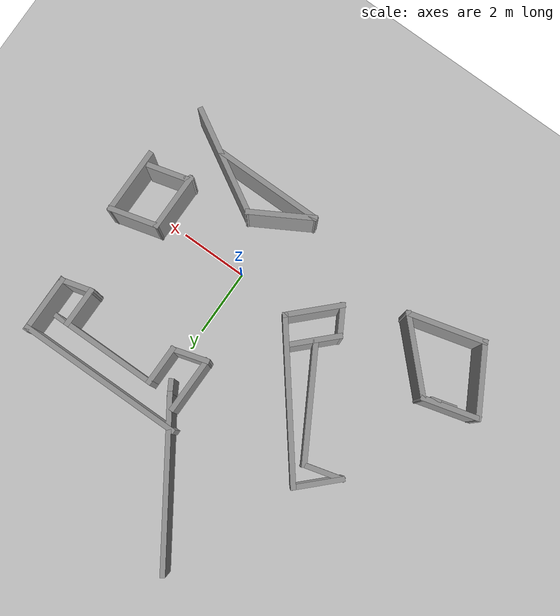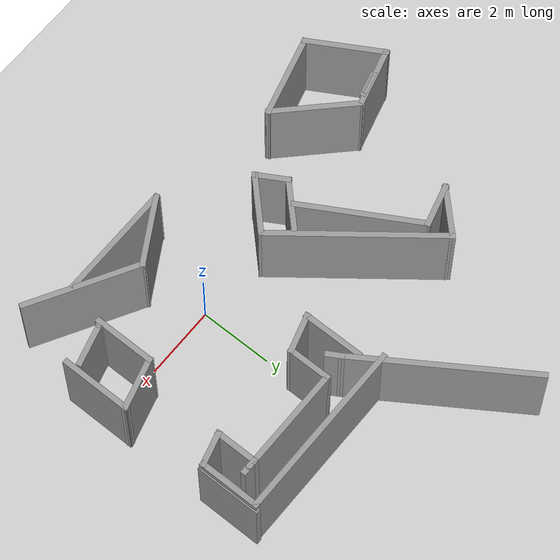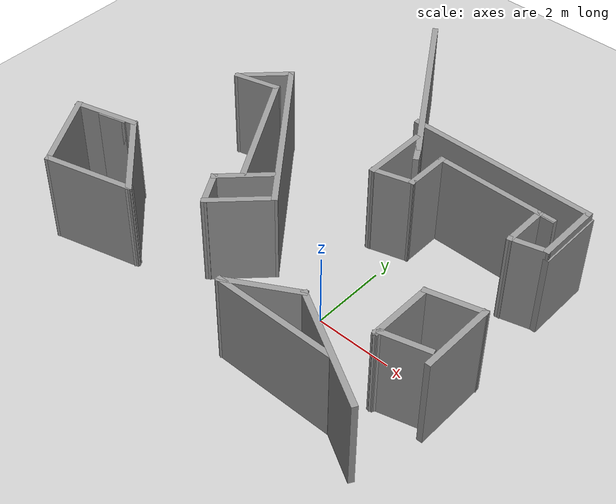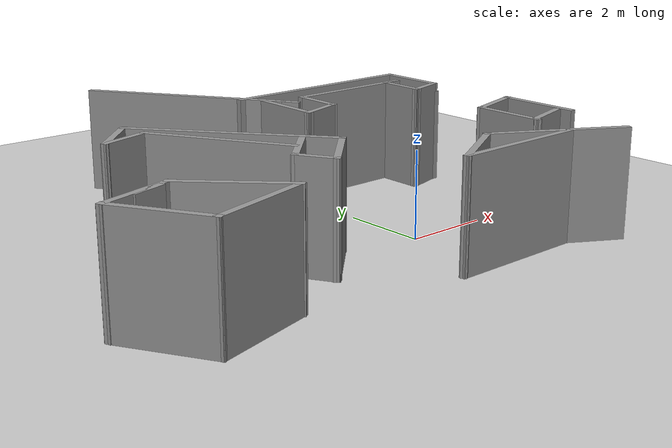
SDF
<sdf version="1.7">
 <world name="default">
  <model name="ground_plane">
   <static>1</static>
   <link name="link">
    <collision name="collision">
     <geometry><plane><normal>0 0 1</normal><size>100 100</size></plane></geometry>
     <surface><friction><ode><mu>100</mu><mu2>50</mu2></ode></friction></surface>
    </collision>
    <visual name="visual">
     <cast_shadows>0</cast_shadows>
     <geometry><plane><normal>0 0 1</normal><size>100 100</size></plane></geometry>
     <material>
      <script><uri>file://media/materials/scripts/gazebo.material</uri><name>Gazebo/Grey</name></script>
     </material>
    </visual>
   </link>
  </model>
  <model name="Untitled_0_clone">
   <pose>0.28562 4.58124 0 0 -0 0</pose>
   <link name="Wall_28">
    <collision name="Wall_28_Collision">
     <geometry><box><size>5.05917 0.15 2.5</size></box></geometry>
     <pose>0 0 1.25 0 -0 0</pose>
    </collision>
    <visual name="Wall_28_Visual">
     <pose>0 0 1.25 0 -0 0</pose>
     <geometry><box><size>5.05917 0.15 2.5</size></box></geometry>
     <material>
      <script><uri>file://media/materials/scripts/gazebo.material</uri><name>Gazebo/Grey</name></script>
      <ambient>1 1 1 1</ambient>
     </material>
     <meta><layer>0</layer></meta>
    </visual>
    <pose>-2.10639 1.43926 0 0 -0 2.15315</pose>
   </link>
   <link name="Wall_30">
    <collision name="Wall_30_Collision">
     <geometry><box><size>5 0.15 2.5</size></box></geometry>
     <pose>0 0 1.25 0 -0 0</pose>
    </collision>
    <visual name="Wall_30_Visual">
     <pose>0 0 1.25 0 -0 0</pose>
     <geometry><box><size>5 0.15 2.5</size></box></geometry>
     <material>
      <script><uri>file://media/materials/scripts/gazebo.material</uri><name>Gazebo/Grey</name></script>
      <ambient>1 1 1 1</ambient>
     </material>
     <meta><layer>0</layer></meta>
    </visual>
    <pose>1.04342 0.171913 0 0 -0 0</pose>
   </link>
   <link name="Wall_31">
    <collision name="Wall_31_Collision">
     <geometry><box><size>1.75 0.15 2.5</size></box></geometry>
     <pose>0 0 1.25 0 -0 0</pose>
    </collision>
    <visual name="Wall_31_Visual">
     <pose>0 0 1.25 0 -0 0</pose>
     <geometry><box><size>1.75 0.15 2.5</size></box></geometry>
     <material>
      <script><uri>file://media/materials/scripts/gazebo.material</uri><name>Gazebo/Grey</name></script>
      <ambient>1 1 1 1</ambient>
     </material>
     <meta><layer>0</layer></meta>
    </visual>
    <pose>3.46842 -0.628087 0 0 -0 -1.5708</pose>
   </link>
   <link name="Wall_32">
    <collision name="Wall_32_Collision">
     <geometry><box><size>1 0.15 2.5</size></box></geometry>
     <pose>0 0 1.25 0 -0 0</pose>
    </collision>
    <visual name="Wall_32_Visual">
     <pose>0 0 1.25 0 -0 0</pose>
     <geometry><box><size>1 0.15 2.5</size></box></geometry>
     <material>
      <script><uri>file://media/materials/scripts/gazebo.material</uri><name>Gazebo/Grey</name></script>
      <ambient>1 1 1 1</ambient>
     </material>
     <meta><layer>0</layer></meta>
    </visual>
    <pose>3.0579 -1.53808 0 0 -0 -2.87979</pose>
   </link>
   <link name="Wall_33">
    <collision name="Wall_33_Collision">
     <geometry><box><size>1.25 0.15 2.5</size></box></geometry>
     <pose>0 0 1.25 0 -0 0</pose>
    </collision>
    <visual name="Wall_33_Visual">
     <pose>0 0 1.25 0 -0 0</pose>
     <geometry><box><size>1.25 0.15 2.5</size></box></geometry>
     <material>
      <script><uri>file://media/materials/scripts/gazebo.material</uri><name>Gazebo/Grey</name></script>
      <ambient>1 1 1 1</ambient>
     </material>
     <meta><layer>0</layer></meta>
    </visual>
    <pose>2.64738 -1.09808 0 0 -0 1.5708</pose>
   </link>
   <link name="Wall_34">
    <collision name="Wall_34_Collision">
     <geometry><box><size>0.5 0.15 2.5</size></box></geometry>
     <pose>0 0 1.25 0 -0 0</pose>
    </collision>
    <visual name="Wall_34_Visual">
     <pose>0 0 1.25 0 -0 0</pose>
     <geometry><box><size>0.5 0.15 2.5</size></box></geometry>
     <material>
      <script><uri>file://media/materials/scripts/gazebo.material</uri><name>Gazebo/Grey</name></script>
      <ambient>1 1 1 1</ambient>
     </material>
     <meta><layer>0</layer></meta>
    </visual>
    <pose>2.82238 -0.548083 0 0 -0 0</pose>
   </link>
   <link name="Wall_35">
    <collision name="Wall_35_Collision">
     <geometry><box><size>3.25 0.15 2.5</size></box></geometry>
     <pose>0 0 1.25 0 -0 0</pose>
    </collision>
    <visual name="Wall_35_Visual">
     <pose>0 0 1.25 0 -0 0</pose>
     <geometry><box><size>3.25 0.15 2.5</size></box></geometry>
     <material>
      <script><uri>file://media/materials/scripts/gazebo.material</uri><name>Gazebo/Grey</name></script>
      <ambient>1 1 1 1</ambient>
     </material>
     <meta><layer>0</layer></meta>
    </visual>
    <pose>1.44738 -0.548083 0 0 -0 3.14159</pose>
   </link>
   <link name="Wall_38">
    <collision name="Wall_38_Collision">
     <geometry><box><size>1.25 0.15 2.5</size></box></geometry>
     <pose>0 0 1.25 0 -0 0</pose>
    </collision>
    <visual name="Wall_38_Visual">
     <pose>0 0 1.25 0 -0 0</pose>
     <geometry><box><size>1.25 0.15 2.5</size></box></geometry>
     <material>
      <script><uri>file://media/materials/scripts/gazebo.material</uri><name>Gazebo/Grey</name></script>
      <ambient>1 1 1 1</ambient>
     </material>
     <meta><layer>0</layer></meta>
    </visual>
    <pose>-0.102616 -1.09808 0 0 -0 -1.5708</pose>
   </link>
   <link name="Wall_42">
    <collision name="Wall_42_Collision">
     <geometry><box><size>0.5 0.15 2.5</size></box></geometry>
     <pose>0 0 1.25 0 -0 0</pose>
    </collision>
    <visual name="Wall_42_Visual">
     <pose>0 0 1.25 0 -0 0</pose>
     <geometry><box><size>0.5 0.15 2.5</size></box></geometry>
     <material>
      <script><uri>file://media/materials/scripts/gazebo.material</uri><name>Gazebo/Grey</name></script>
      <ambient>1 1 1 1</ambient>
     </material>
     <meta><layer>0</layer></meta>
    </visual>
    <pose>-0.668889 -0.762292 0 0 -0 -1.0472</pose>
   </link>
   <link name="Wall_48">
    <collision name="Wall_48_Collision">
     <geometry><box><size>1.75 0.15 2.5</size></box></geometry>
     <pose>0 0 1.25 0 -0 0</pose>
    </collision>
    <visual name="Wall_48_Visual">
     <pose>0 0 1.25 0 -0 0</pose>
     <geometry><box><size>1.75 0.15 2.5</size></box></geometry>
     <material>
      <script><uri>file://media/materials/scripts/gazebo.material</uri><name>Gazebo/Grey</name></script>
      <ambient>1 1 1 1</ambient>
     </material>
     <meta><layer>0</layer></meta>
    </visual>
    <pose>-1.04802 -1.12336 0 0 -0 -1.5708</pose>
   </link>
   <link name="Wall_49">
    <collision name="Wall_49_Collision">
     <geometry><box><size>1.13466 0.15 2.5</size></box></geometry>
     <pose>0 0 1.25 0 -0 0</pose>
    </collision>
    <visual name="Wall_49_Visual">
     <pose>0 0 1.25 0 -0 0</pose>
     <geometry><box><size>1.13466 0.15 2.5</size></box></geometry>
     <material>
      <script><uri>file://media/materials/scripts/gazebo.material</uri><name>Gazebo/Grey</name></script>
      <ambient>1 1 1 1</ambient>
     </material>
     <meta><layer>0</layer></meta>
    </visual>
    <pose>-0.575317 -1.78572 0 0 -0 0.283337</pose>
   </link>
   <static>1</static>
  </model>
  <model name="Untitled_3">
   <pose>-1.94464 0.606467 0 0 -0 0</pose>
   <link name="Wall_19">
    <collision name="Wall_19_Collision">
     <geometry><box><size>1.5 0.15 2.5</size></box></geometry>
     <pose>0 0 1.25 0 -0 0</pose>
    </collision>
    <visual name="Wall_19_Visual">
     <pose>0 0 1.25 0 -0 0</pose>
     <geometry><box><size>1.5 0.15 2.5</size></box></geometry>
     <material>
      <script><uri>file://media/materials/scripts/gazebo.material</uri><name>Gazebo/Grey</name></script>
      <ambient>1 1 1 1</ambient>
     </material>
     <meta><layer>0</layer></meta>
    </visual>
    <pose>5.11912 0.001474 0 0 -0 -2.87979</pose>
   </link>
   <link name="Wall_21">
    <collision name="Wall_21_Collision">
     <geometry><box><size>1.75 0.15 2.5</size></box></geometry>
     <pose>0 0 1.25 0 -0 0</pose>
    </collision>
    <visual name="Wall_21_Visual">
     <pose>0 0 1.25 0 -0 0</pose>
     <geometry><box><size>1.75 0.15 2.5</size></box></geometry>
     <material>
      <script><uri>file://media/materials/scripts/gazebo.material</uri><name>Gazebo/Grey</name></script>
      <ambient>1 1 1 1</ambient>
     </material>
     <meta><layer>0</layer></meta>
    </visual>
    <pose>4.46712 -0.973229 0 0 -0 -1.5708</pose>
   </link>
   <link name="Wall_24">
    <collision name="Wall_24_Collision">
     <geometry><box><size>0.253645 0.15 2.5</size></box></geometry>
     <pose>0 0 1.25 0 -0 0</pose>
    </collision>
    <visual name="Wall_24_Visual">
     <pose>0 0 1.25 0 -0 0</pose>
     <geometry><box><size>0.253645 0.15 2.5</size></box></geometry>
     <material>
      <script><uri>file://media/materials/scripts/gazebo.material</uri><name>Gazebo/Grey</name></script>
      <ambient>1 1 1 1</ambient>
     </material>
     <meta><layer>0</layer></meta>
    </visual>
    <pose>4.50312 -1.73596 0 0 -0 0.802576</pose>
   </link>
   <link name="Wall_25">
    <collision name="Wall_25_Collision">
     <geometry><box><size>1.25 0.15 2.5</size></box></geometry>
     <pose>0 0 1.25 0 -0 0</pose>
    </collision>
    <visual name="Wall_25_Visual">
     <pose>0 0 1.25 0 -0 0</pose>
     <geometry><box><size>1.25 0.15 2.5</size></box></geometry>
     <material>
      <script><uri>file://media/materials/scripts/gazebo.material</uri><name>Gazebo/Grey</name></script>
      <ambient>1 1 1 1</ambient>
     </material>
     <meta><layer>0</layer></meta>
    </visual>
    <pose>5.07039 -1.55634 0 0 -0 0.261799</pose>
   </link>
   <link name="Wall_27">
    <collision name="Wall_27_Collision">
     <geometry><box><size>2 0.15 2.5</size></box></geometry>
     <pose>0 0 1.25 0 -0 0</pose>
    </collision>
    <visual name="Wall_27_Visual">
     <pose>0 0 1.25 0 -0 0</pose>
     <geometry><box><size>2 0.15 2.5</size></box></geometry>
     <material>
      <script><uri>file://media/materials/scripts/gazebo.material</uri><name>Gazebo/Grey</name></script>
      <ambient>1 1 1 1</ambient>
     </material>
     <meta><layer>0</layer></meta>
    </visual>
    <pose>5.77112 -0.748823 0 0 -0 -1.5708</pose>
   </link>
   <link name="Wall_31">
    <collision name="Wall_31_Collision">
     <geometry><box><size>3.25 0.15 2.5</size></box></geometry>
     <pose>0 0 1.25 0 -0 0</pose>
    </collision>
    <visual name="Wall_31_Visual">
     <pose>0 0 1.25 0 -0 0</pose>
     <geometry><box><size>3.25 0.15 2.5</size></box></geometry>
     <material>
      <script><uri>file://media/materials/scripts/gazebo.material</uri><name>Gazebo/Grey</name></script>
      <ambient>1 1 1 1</ambient>
     </material>
     <meta><layer>0</layer></meta>
    </visual>
    <pose>3.99115 -2.71266 0 0 -0 2.61799</pose>
   </link>
   <link name="Wall_33">
    <collision name="Wall_33_Collision">
     <geometry><box><size>2 0.15 2.5</size></box></geometry>
     <pose>0 0 1.25 0 -0 0</pose>
    </collision>
    <visual name="Wall_33_Visual">
     <pose>0 0 1.25 0 -0 0</pose>
     <geometry><box><size>2 0.15 2.5</size></box></geometry>
     <material>
      <script><uri>file://media/materials/scripts/gazebo.material</uri><name>Gazebo/Grey</name></script>
      <ambient>1 1 1 1</ambient>
     </material>
     <meta><layer>0</layer></meta>
    </visual>
    <pose>1.84774 -2.40016 0 0 -0 -2.61799</pose>
   </link>
   <link name="Wall_34">
    <collision name="Wall_34_Collision">
     <geometry><box><size>3.25 0.15 2.5</size></box></geometry>
     <pose>0 0 1.25 0 -0 0</pose>
    </collision>
    <visual name="Wall_34_Visual">
     <pose>0 0 1.25 0 -0 0</pose>
     <geometry><box><size>3.25 0.15 2.5</size></box></geometry>
     <material>
      <script><uri>file://media/materials/scripts/gazebo.material</uri><name>Gazebo/Grey</name></script>
      <ambient>1 1 1 1</ambient>
     </material>
     <meta><layer>0</layer></meta>
    </visual>
    <pose>2.59666 -2.86266 0 0 -0 0</pose>
   </link>
   <link name="Wall_41">
    <collision name="Wall_41_Collision">
     <geometry><box><size>2.5 0.15 2.5</size></box></geometry>
     <pose>0 0 1.25 0 -0 0</pose>
    </collision>
    <visual name="Wall_41_Visual">
     <pose>0 0 1.25 0 -0 0</pose>
     <geometry><box><size>2.5 0.15 2.5</size></box></geometry>
     <material>
      <script><uri>file://media/materials/scripts/gazebo.material</uri><name>Gazebo/Grey</name></script>
      <ambient>1 1 1 1</ambient>
     </material>
     <meta><layer>0</layer></meta>
    </visual>
    <pose>-3.38419 -1.38181 0 0 -0 2.35619</pose>
   </link>
   <link name="Wall_42">
    <collision name="Wall_42_Collision">
     <geometry><box><size>1.75 0.15 2.5</size></box></geometry>
     <pose>0 0 1.25 0 -0 0</pose>
    </collision>
    <visual name="Wall_42_Visual">
     <pose>0 0 1.25 0 -0 0</pose>
     <geometry><box><size>1.75 0.15 2.5</size></box></geometry>
     <material>
      <script><uri>file://media/materials/scripts/gazebo.material</uri><name>Gazebo/Grey</name></script>
      <ambient>1 1 1 1</ambient>
     </material>
     <meta><layer>0</layer></meta>
    </visual>
    <pose>-4.98778 -0.758017 0 0 -0 -2.87979</pose>
   </link>
   <link name="Wall_44">
    <collision name="Wall_44_Collision">
     <geometry><box><size>2.25 0.15 2.5</size></box></geometry>
     <pose>0 0 1.25 0 -0 0</pose>
    </collision>
    <visual name="Wall_44_Visual">
     <pose>0 0 1.25 0 -0 0</pose>
     <geometry><box><size>2.25 0.15 2.5</size></box></geometry>
     <material>
      <script><uri>file://media/materials/scripts/gazebo.material</uri><name>Gazebo/Grey</name></script>
      <ambient>1 1 1 1</ambient>
     </material>
     <meta><layer>0</layer></meta>
    </visual>
    <pose>-5.23552 -1.8744 0 0 -0 -1.0472</pose>
   </link>
   <link name="Wall_45">
    <collision name="Wall_45_Collision">
     <geometry><box><size>2.38149 0.15 2.5</size></box></geometry>
     <pose>0 0 1.25 0 -0 0</pose>
    </collision>
    <visual name="Wall_45_Visual">
     <pose>0 0 1.25 0 -0 0</pose>
     <geometry><box><size>2.38149 0.15 2.5</size></box></geometry>
     <material>
      <script><uri>file://media/materials/scripts/gazebo.material</uri><name>Gazebo/Grey</name></script>
      <ambient>1 1 1 1</ambient>
     </material>
     <meta><layer>0</layer></meta>
    </visual>
    <pose>-3.63193 -2.49819 0 0 -0 0.25879</pose>
   </link>
   <link name="Wall_47">
    <collision name="Wall_47_Collision">
     <geometry><box><size>0.3 0.15 2.5</size></box></geometry>
     <pose>0 0 1.25 0 -0 0</pose>
    </collision>
    <visual name="Wall_47_Visual">
     <pose>0 0 1.25 0 -0 0</pose>
     <geometry><box><size>0.3 0.15 2.5</size></box></geometry>
     <material>
      <script><uri>file://media/materials/scripts/gazebo.material</uri><name>Gazebo/Grey</name></script>
      <ambient>1 1 1 1</ambient>
     </material>
     <meta><layer>0</layer></meta>
    </visual>
    <pose>-4.53501 -0.684665 0 0 -0 0.261799</pose>
   </link>
   <link name="Wall_48">
    <collision name="Wall_48_Collision">
     <geometry><box><size>0.75 0.15 2.5</size></box></geometry>
     <pose>0 0 1.25 0 -0 0</pose>
    </collision>
    <visual name="Wall_48_Visual">
     <pose>0 0 1.25 0 -0 0</pose>
     <geometry><box><size>0.75 0.15 2.5</size></box></geometry>
     <material>
      <script><uri>file://media/materials/scripts/gazebo.material</uri><name>Gazebo/Grey</name></script>
      <ambient>1 1 1 1</ambient>
     </material>
     <meta><layer>0</layer></meta>
    </visual>
    <pose>-4.75234 -0.7429 0 0 -0 -2.87979</pose>
   </link>
   <link name="Wall_52">
    <collision name="Wall_52_Collision">
     <geometry><box><size>1.5 0.15 2.5</size></box></geometry>
     <pose>0 0 1.25 0 -0 0</pose>
    </collision>
    <visual name="Wall_52_Visual">
     <pose>0 0 1.25 0 -0 0</pose>
     <geometry><box><size>1.5 0.15 2.5</size></box></geometry>
     <material>
      <script><uri>file://media/materials/scripts/gazebo.material</uri><name>Gazebo/Grey</name></script>
      <ambient>1 1 1 1</ambient>
     </material>
     <meta><layer>0</layer></meta>
    </visual>
    <pose>-3.21483 3.00675 0 0 -0 0.785398</pose>
   </link>
   <link name="Wall_61">
    <collision name="Wall_61_Collision">
     <geometry><box><size>1 0.15 2.5</size></box></geometry>
     <pose>0 0 1.25 0 -0 0</pose>
    </collision>
    <visual name="Wall_61_Visual">
     <pose>0 0 1.25 0 -0 0</pose>
     <geometry><box><size>1 0.15 2.5</size></box></geometry>
     <material>
      <script><uri>file://media/materials/scripts/gazebo.material</uri><name>Gazebo/Grey</name></script>
      <ambient>1 1 1 1</ambient>
     </material>
     <meta><layer>0</layer></meta>
    </visual>
    <pose>-1.17503 -0.984012 0 0 -0 -1.0472</pose>
   </link>
   <link name="Wall_62">
    <collision name="Wall_62_Collision">
     <geometry><box><size>1.75 0.15 2.5</size></box></geometry>
     <pose>0 0 1.25 0 -0 0</pose>
    </collision>
    <visual name="Wall_62_Visual">
     <pose>0 0 1.25 0 -0 0</pose>
     <geometry><box><size>1.75 0.15 2.5</size></box></geometry>
     <material>
      <script><uri>file://media/materials/scripts/gazebo.material</uri><name>Gazebo/Grey</name></script>
      <ambient>1 1 1 1</ambient>
     </material>
     <meta><layer>0</layer></meta>
    </visual>
    <pose>-0.396843 -0.786387 0 0 -0 0.785398</pose>
   </link>
   <link name="Wall_63">
    <collision name="Wall_63_Collision">
     <geometry><box><size>4.85873 0.15 2.5</size></box></geometry>
     <pose>0 0 1.25 0 -0 0</pose>
    </collision>
    <visual name="Wall_63_Visual">
     <pose>0 0 1.25 0 -0 0</pose>
     <geometry><box><size>4.85873 0.15 2.5</size></box></geometry>
     <material>
      <script><uri>file://media/materials/scripts/gazebo.material</uri><name>Gazebo/Grey</name></script>
      <ambient>1 1 1 1</ambient>
     </material>
     <meta><layer>0</layer></meta>
    </visual>
    <pose>-1.28434 1.63167 0 0 -0 2.23601</pose>
   </link>
   <link name="Wall_65">
    <collision name="Wall_65_Collision">
     <geometry><box><size>1.5 0.15 2.5</size></box></geometry>
     <pose>0 0 1.25 0 -0 0</pose>
    </collision>
    <visual name="Wall_65_Visual">
     <pose>0 0 1.25 0 -0 0</pose>
     <geometry><box><size>1.5 0.15 2.5</size></box></geometry>
     <material>
      <script><uri>file://media/materials/scripts/gazebo.material</uri><name>Gazebo/Grey</name></script>
      <ambient>1 1 1 1</ambient>
     </material>
     <meta><layer>0</layer></meta>
    </visual>
    <pose>-0.910231 -0.138654 0 0 -0 0.785398</pose>
   </link>
   <link name="Wall_67">
    <collision name="Wall_67_Collision">
     <geometry><box><size>1.25 0.15 2.5</size></box></geometry>
     <pose>0 0 1.25 0 -0 0</pose>
    </collision>
    <visual name="Wall_67_Visual">
     <pose>0 0 1.25 0 -0 0</pose>
     <geometry><box><size>1.25 0.15 2.5</size></box></geometry>
     <material>
      <script><uri>file://media/materials/scripts/gazebo.material</uri><name>Gazebo/Grey</name></script>
      <ambient>1 1 1 1</ambient>
     </material>
     <meta><layer>0</layer></meta>
    </visual>
    <pose>-3.16086 2.6718 0 0 -0 0.261799</pose>
   </link>
   <link name="Wall_69">
    <collision name="Wall_69_Collision">
     <geometry><box><size>3.5 0.15 2.5</size></box></geometry>
     <pose>0 0 1.25 0 -0 0</pose>
    </collision>
    <visual name="Wall_69_Visual">
     <pose>0 0 1.25 0 -0 0</pose>
     <geometry><box><size>3.5 0.15 2.5</size></box></geometry>
     <material>
      <script><uri>file://media/materials/scripts/gazebo.material</uri><name>Gazebo/Grey</name></script>
      <ambient>1 1 1 1</ambient>
     </material>
     <meta><layer>0</layer></meta>
    </visual>
    <pose>-1.7921 1.36356 0 0 -0 -1.0472</pose>
   </link>
   <static>1</static>
  </model>
  <model name="Untitled">
   <pose>1.93506 2.43356 0 0 -0 0</pose>
   <link name="Wall_43">
    <collision name="Wall_43_Collision">
     <geometry><box><size>1.8 0.15 2.3</size></box></geometry>
     <pose>0 0 1.15 0 -0 0</pose>
    </collision>
    <visual name="Wall_43_Visual">
     <pose>0 0 1.15 0 -0 0</pose>
     <geometry><box><size>1.8 0.15 2.3</size></box></geometry>
     <material>
      <script><uri>file://media/materials/scripts/gazebo.material</uri><name>Gazebo/Grey</name></script>
      <ambient>1 1 1 1</ambient>
     </material>
     <meta><layer>0</layer></meta>
    </visual>
    <pose>1.86006 1.53356 0 0 -0 1.5708</pose>
   </link>
   <static>1</static>
  </model>
 </world>
</sdf>
